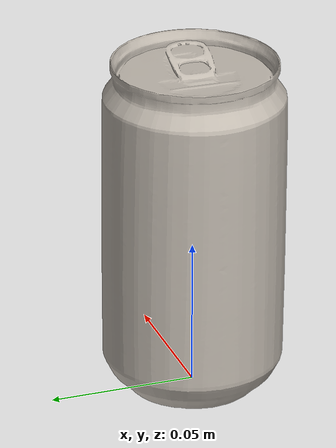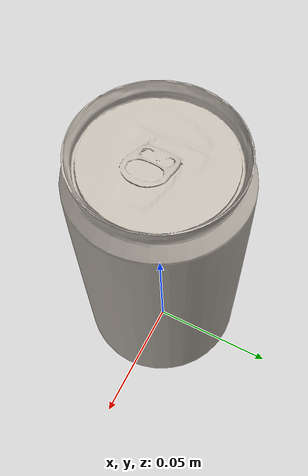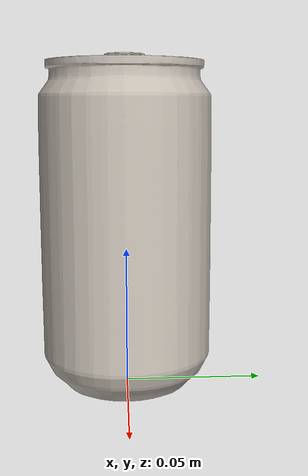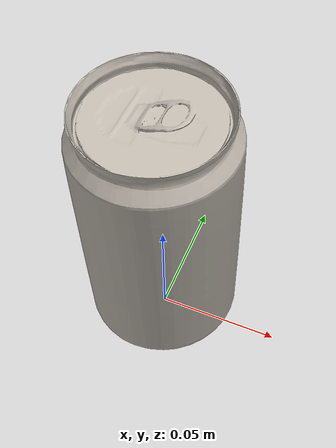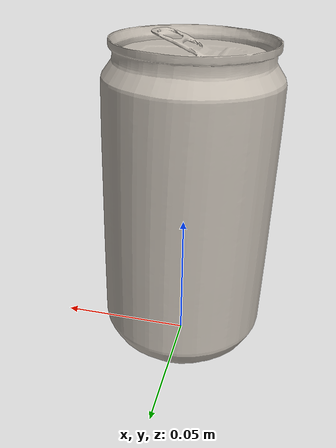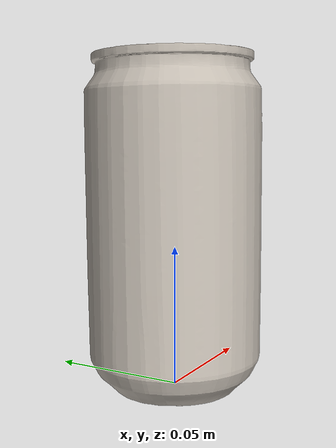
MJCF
<mujoco model="071_can">
  <asset>
    <mesh name="071_can_visual" file="071_can_visual.obj"/>
    <mesh name="071_can_collision" file="071_can_collision.stl"/>
    <texture name="071_can_tex" type="2d" file="071_can.png"/>
    <material name="071_can_mat" texture="071_can_tex"/>
  </asset>
  <worldbody>
    <body name="071_can" pos="0 0 0">
      <freejoint/>
      <geom type="mesh" mesh="071_can_visual" material="071_can_mat"
            mass="0.1571" contype="0" conaffinity="0"/>
      <geom type="mesh" mesh="071_can_collision" mass="0"
            contype="1" conaffinity="1"
            friction="0.5 .005 0.01"
            rgba="0 0 0 0"/>
    </body>
  </worldbody>
</mujoco>
